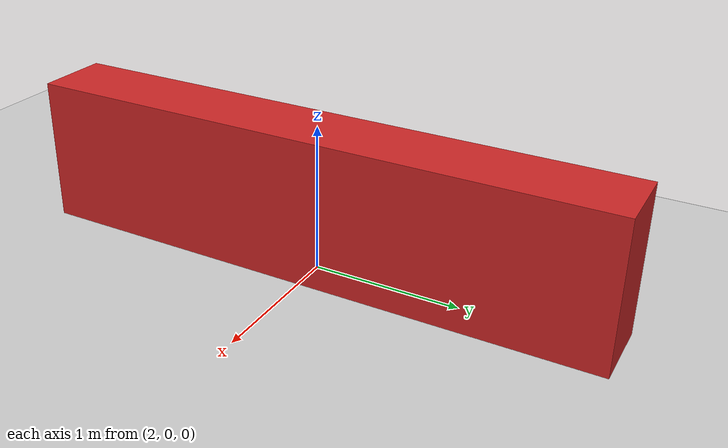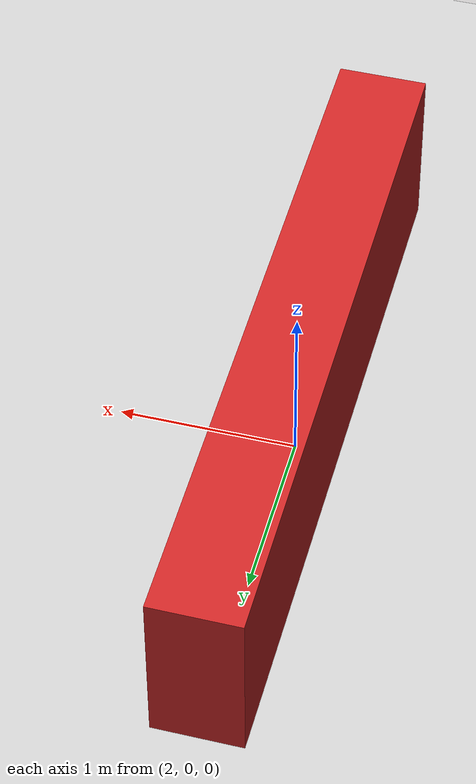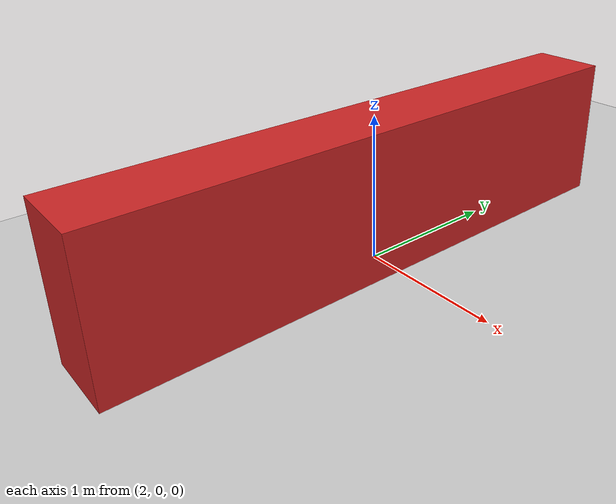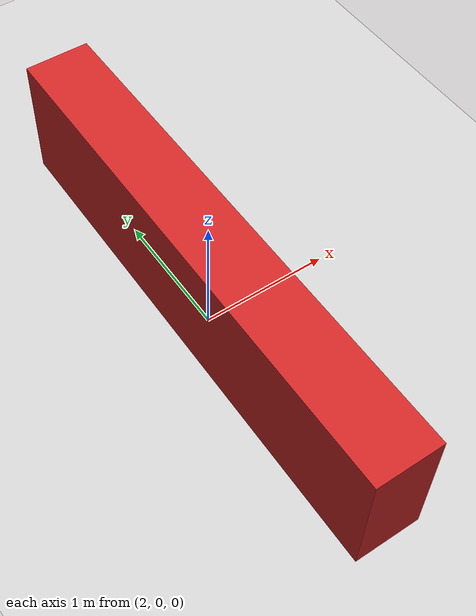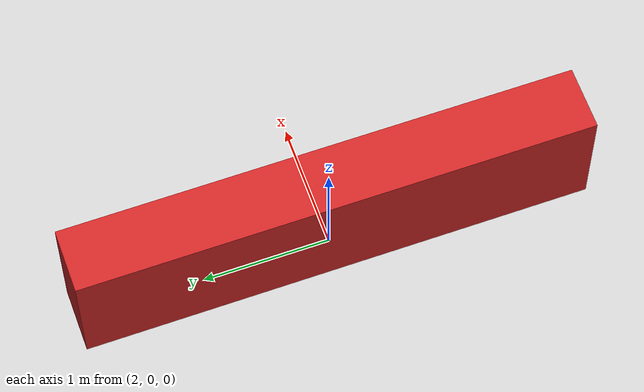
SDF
<?xml version="1.0" ?>
<sdf version="1.6">
  <world name="default">
    <include>
      <uri>model://ground_plane</uri>
    </include>
    <include>
      <uri>model://sun</uri>
    </include>
    <model name="obstacle_box">
      <static>true</static>
      <pose>2 0 0.5 0 0 0</pose>
      <link name="link">
        <collision name="collision">
          <geometry>
            <box>
              <size>0.5 4 1</size>
            </box>
          </geometry>
        </collision>
        <visual name="visual">
          <geometry>
            <box>
              <size>0.5 4 1</size>
            </box>
          </geometry>
          <material>
            <script>
              <uri>file://media/materials/scripts/gazebo.material</uri>
              <name>Gazebo/Red</name>
            </script>
          </material>
        </visual>
      </link>
    </model>
  </world>
</sdf>
